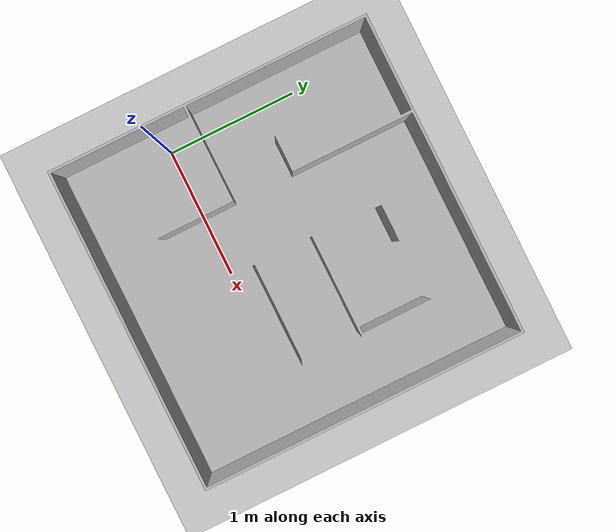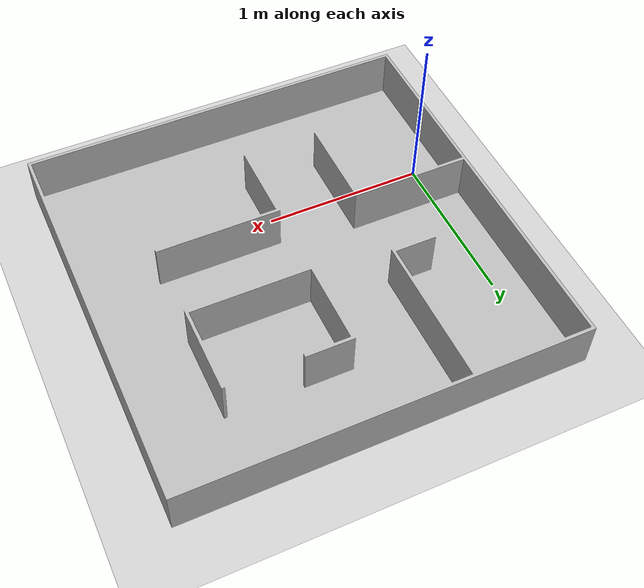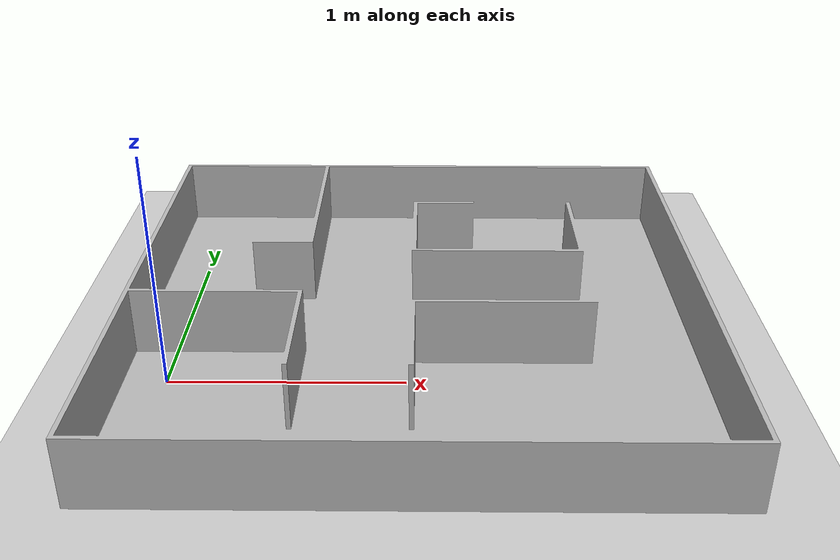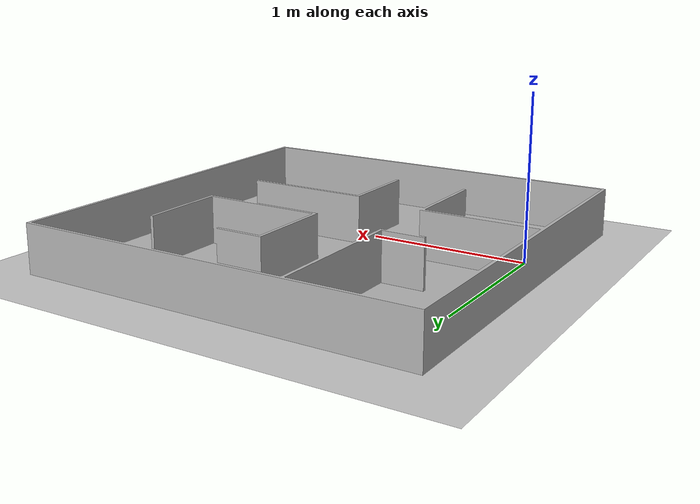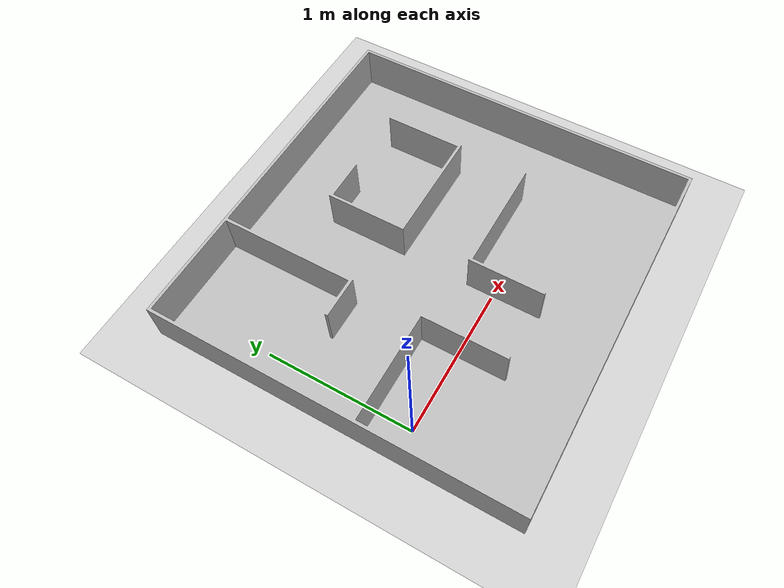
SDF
<sdf version="1.6">
 <world name="default">
  <light name="sun" type="directional">
   <pose>0 0 10 0 -0 0</pose>
   <diffuse>0.8 0.8 0.8 1</diffuse>
   <specular>0.2 0.2 0.2 1</specular>
   <attenuation>
    <range>1000</range>
    <constant>0.9</constant>
    <linear>0.01</linear>
    <quadratic>0.001</quadratic>
   </attenuation>
   <direction>-0.5 0.1 -0.9</direction>
  </light>
  <model name="ground_plane">
   <static>1</static>
   <link name="link">
    <collision name="collision">
     <geometry><plane><normal>0 0 1</normal><size>100 100</size></plane></geometry>
     <surface>
      <contact><collide_bitmask>65535</collide_bitmask></contact>
      <friction><ode><mu>100</mu><mu2>50</mu2></ode></friction>
     </surface>
    </collision>
    <visual name="visual">
     <cast_shadows>0</cast_shadows>
     <geometry><plane><normal>0 0 1</normal><size>100 100</size></plane></geometry>
     <material>
      <script><uri>file://media/materials/scripts/gazebo.material</uri><name>Gazebo/Grey</name></script>
     </material>
    </visual>
   </link>
  </model>
  <gravity>0 0 -9.8</gravity>
  <magnetic_field>6e-06 2.3e-05 -4.2e-05</magnetic_field>
  <atmosphere type="adiabatic"/>
  <physics name="default_physics" default="0" type="ode">
   <max_step_size>0.001</max_step_size>
   <real_time_factor>1</real_time_factor>
   <real_time_update_rate>1000</real_time_update_rate>
  </physics>
  <scene><ambient>0.4 0.4 0.4 1</ambient><background>0.7 0.7 0.7 1</background><shadows>1</shadows></scene>
  <spherical_coordinates>
   <surface_model>EARTH_WGS84</surface_model>
   <latitude_deg>0</latitude_deg>
   <longitude_deg>0</longitude_deg>
   <elevation>0</elevation>
   <heading_deg>0</heading_deg>
  </spherical_coordinates>
  <model name="Config_normal">
   <link name="Config_normal">
    <inertial>
     <pose>-1.2345 1.2428 0.059465 0 -0 0</pose>
     <mass>217.39</mass>
     <inertia>
      <ixx>133.33</ixx>
      <ixy>-0.47508</ixy>
      <ixz>0.2847</ixz>
      <iyy>134.42</iyy>
      <iyz>0.44943</iyz>
      <izz>263.59</izz>
     </inertia>
    </inertial>
    <collision name="Config_normal_collision">
     <pose>0 0 0 1.5708 -0 0</pose>
     <geometry>
      <mesh><scale>1 1 1</scale><uri>model://oped_gazebo/meshes/Configuration_1.STL</uri></mesh>
     </geometry>
    </collision>
    <visual name="Config_normal_visual">
     <pose>0 0 0 1.5708 -0 0</pose>
     <geometry>
      <mesh><scale>1 1 1</scale><uri>model://oped_gazebo/meshes/Configuration_1.STL</uri></mesh>
     </geometry>
    </visual>
   </link>
   <pose>2.25598 -0.787125 0 0 -0 0</pose>
  </model>
 </world>
</sdf>
